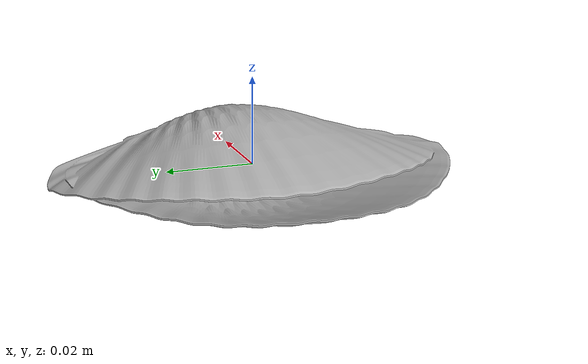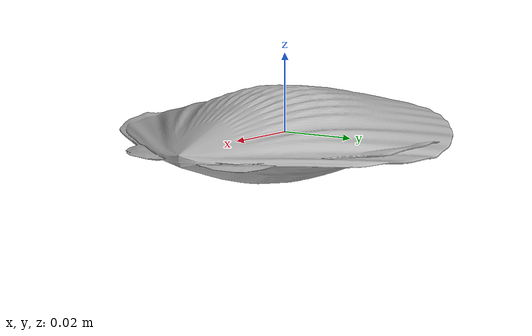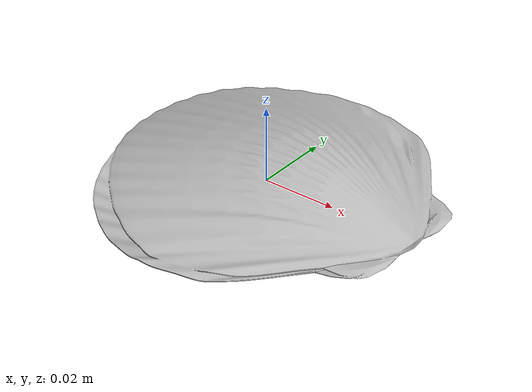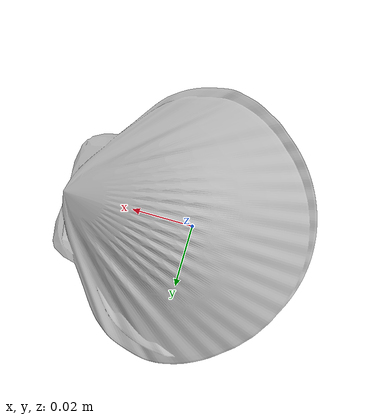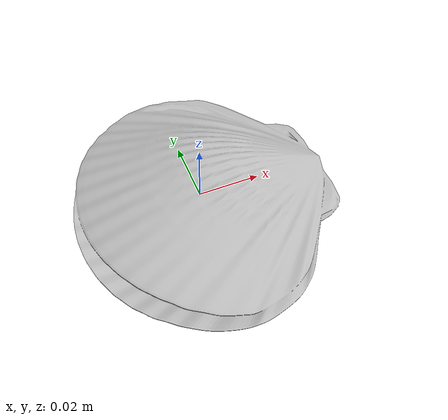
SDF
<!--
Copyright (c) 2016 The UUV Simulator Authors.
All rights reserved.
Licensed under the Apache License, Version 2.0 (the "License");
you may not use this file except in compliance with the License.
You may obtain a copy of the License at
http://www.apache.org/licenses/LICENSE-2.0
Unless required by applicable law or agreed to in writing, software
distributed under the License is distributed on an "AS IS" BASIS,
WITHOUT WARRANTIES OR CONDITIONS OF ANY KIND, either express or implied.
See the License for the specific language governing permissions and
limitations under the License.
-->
<?xml version="1.0" ?>
<sdf version="1.5">
  <model name="scallop">
    <pose>0 0 0 0 0 0</pose>

    <link name="base">
      <inertial>
        <mass>0.5</mass>
        <inertia>
          <ixx>1</ixx>
          <iyy>100</iyy>
          <izz>1</izz>
          <ixy>0</ixy>
          <ixz>0</ixz>
          <iyz>0</iyz>
        </inertia>
      </inertial>

      <collision name="base_collision">
        <geometry>
          <mesh>
            <uri>model://scallop/meshes/scallop.dae</uri>
          </mesh>
        </geometry>
      </collision>

      <visual name="base_visual">
        <geometry>
          <mesh>
            <uri>model://scallop/meshes/scallop.dae</uri>
          </mesh>
        </geometry>
      </visual>

      <self_collide>0</self_collide>
    </link>

  </model>
</sdf>
